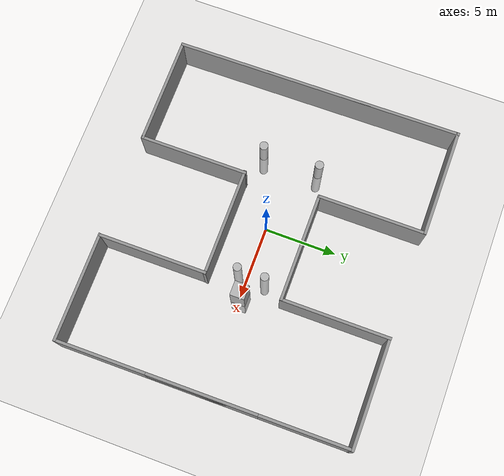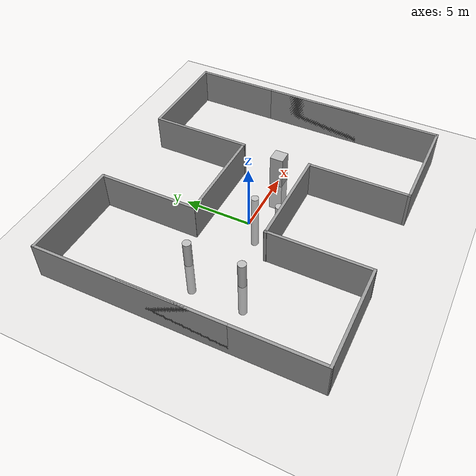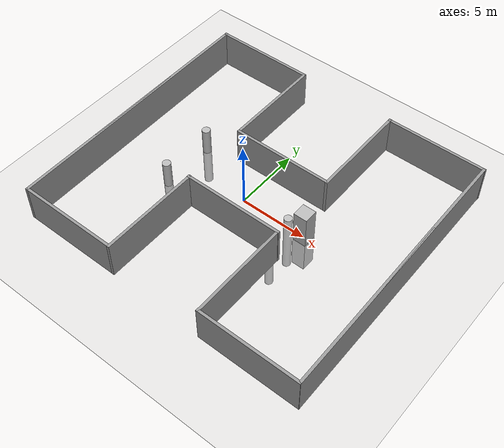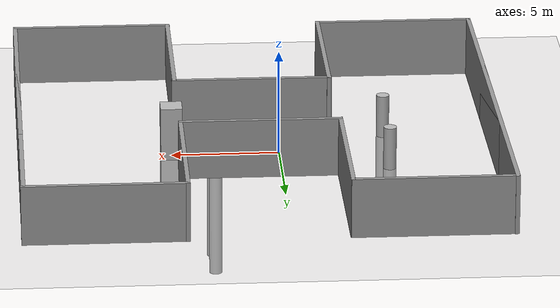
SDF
<sdf version="1.6">
 <world name="default">
  <model name="ground_plane">
   <static>1</static>
   <link name="link">
    <collision name="collision">
     <geometry><plane><normal>0 0 1</normal><size>100 100</size></plane></geometry>
     <surface><friction><ode><mu>100</mu><mu2>50</mu2></ode></friction></surface>
    </collision>
    <visual name="visual">
     <cast_shadows>0</cast_shadows>
     <geometry><plane><normal>0 0 1</normal><size>100 100</size></plane></geometry>
     <material>
      <script><uri>file://media/materials/scripts/gazebo.material</uri><name>Gazebo/Grey</name></script>
     </material>
    </visual>
   </link>
  </model>
  <light name="sun" type="directional">
   <pose>0 0 10 0 -0 0</pose>
   <diffuse>0.8 0.8 0.8 1</diffuse>
   <specular>0.1 0.1 0.1 1</specular>
   <attenuation>
    <range>1000</range>
    <constant>0.9</constant>
    <linear>0.01</linear>
    <quadratic>0.001</quadratic>
   </attenuation>
   <direction>-0.5 0.5 -1</direction>
  </light>
  <gravity>0 0 -9.8</gravity>
  <magnetic_field>6e-06 2.3e-05 -4.2e-05</magnetic_field>
  <atmosphere type="adiabatic"/>
  <physics name="default_physics" default="0" type="ode">
   <max_step_size>0.001</max_step_size>
   <real_time_factor>1</real_time_factor>
   <real_time_update_rate>1000</real_time_update_rate>
  </physics>
  <model name="grey_wall">
   <static>1</static>
   <link name="link">
    <pose>0 0 1.4 0 -0 0</pose>
    <collision name="collision"><geometry><box><size>7.5 0.2 2.8</size></box></geometry></collision>
    <visual name="visual">
     <cast_shadows>0</cast_shadows>
     <geometry><box><size>7.5 0.2 2.8</size></box></geometry>
     <material>
      <script>
       <uri>model://grey_wall/materials/scripts</uri>
       <uri>model://grey_wall/materials/textures</uri>
       <name>vrc/grey_wall</name>
      </script>
     </material>
    </visual>
   </link>
   <pose>-6.33005 10.0527 0 0 -0 0</pose>
  </model>
  <model name="grey_wall_3">
   <link name="link">
    <pose>0 0 1.4 0 -0 0</pose>
    <visual name="visual">
     <cast_shadows>0</cast_shadows>
     <geometry><box><size>7.5 0.2 2.8</size></box></geometry>
     <material>
      <script>
       <uri>model://grey_wall/materials/scripts</uri>
       <uri>model://grey_wall/materials/textures</uri>
       <name>vrc/grey_wall</name>
      </script>
      <ambient>1 1 1 1</ambient>
      <diffuse>1 1 1 1</diffuse>
      <specular>0 0 0 1</specular>
      <emissive>0 0 0 1</emissive>
     </material>
    </visual>
    <collision name="collision">
     <geometry><box><size>7.5 0.2 2.8</size></box></geometry>
     <surface>
      <friction>
       <ode><mu>1</mu><mu2>1</mu2><fdir1>0 0 0</fdir1><slip1>0</slip1><slip2>0</slip2></ode>
       <torsional>
        <coefficient>1</coefficient>
        <patch_radius>0</patch_radius>
        <surface_radius>0</surface_radius>
        <use_patch_radius>1</use_patch_radius>
        <ode><slip>0</slip></ode>
       </torsional>
      </friction>
      <bounce><restitution_coefficient>0</restitution_coefficient><threshold>1e+06</threshold></bounce>
      <contact>
       <collide_without_contact>0</collide_without_contact>
       <collide_without_contact_bitmask>1</collide_without_contact_bitmask>
       <collide_bitmask>1</collide_bitmask>
       <ode>
        <soft_cfm>0</soft_cfm>
        <soft_erp>0.2</soft_erp>
        <kp>1e+13</kp>
        <kd>1</kd>
        <max_vel>0.01</max_vel>
        <min_depth>0</min_depth>
       </ode>
       <bullet>
        <split_impulse>1</split_impulse>
        <split_impulse_penetration_threshold>-0.01</split_impulse_penetration_threshold>
        <soft_cfm>0</soft_cfm>
        <soft_erp>0.2</soft_erp>
        <kp>1e+13</kp>
        <kd>1</kd>
       </bullet>
      </contact>
     </surface>
    </collision>
   </link>
   <static>1</static>
   <pose>8.39643 -9.79569 0 0 -0 0</pose>
  </model>
  <model name="grey_wall_4">
   <link name="link">
    <pose>0 0 1.4 0 -0 0</pose>
    <visual name="visual">
     <cast_shadows>0</cast_shadows>
     <geometry><box><size>7.5 0.2 2.8</size></box></geometry>
     <material>
      <script>
       <uri>model://grey_wall/materials/scripts</uri>
       <uri>model://grey_wall/materials/textures</uri>
       <name>vrc/grey_wall</name>
      </script>
      <ambient>1 1 1 1</ambient>
      <diffuse>1 1 1 1</diffuse>
      <specular>0 0 0 1</specular>
      <emissive>0 0 0 1</emissive>
     </material>
    </visual>
    <collision name="collision">
     <geometry><box><size>7.5 0.2 2.8</size></box></geometry>
     <surface>
      <friction>
       <ode><mu>1</mu><mu2>1</mu2><fdir1>0 0 0</fdir1><slip1>0</slip1><slip2>0</slip2></ode>
       <torsional>
        <coefficient>1</coefficient>
        <patch_radius>0</patch_radius>
        <surface_radius>0</surface_radius>
        <use_patch_radius>1</use_patch_radius>
        <ode><slip>0</slip></ode>
       </torsional>
      </friction>
      <bounce><restitution_coefficient>0</restitution_coefficient><threshold>1e+06</threshold></bounce>
      <contact>
       <collide_without_contact>0</collide_without_contact>
       <collide_without_contact_bitmask>1</collide_without_contact_bitmask>
       <collide_bitmask>1</collide_bitmask>
       <ode>
        <soft_cfm>0</soft_cfm>
        <soft_erp>0.2</soft_erp>
        <kp>1e+13</kp>
        <kd>1</kd>
        <max_vel>0.01</max_vel>
        <min_depth>0</min_depth>
       </ode>
       <bullet>
        <split_impulse>1</split_impulse>
        <split_impulse_penetration_threshold>-0.01</split_impulse_penetration_threshold>
        <soft_cfm>0</soft_cfm>
        <soft_erp>0.2</soft_erp>
        <kp>1e+13</kp>
        <kd>1</kd>
       </bullet>
      </contact>
     </surface>
    </collision>
   </link>
   <static>1</static>
   <pose>8.34356 10.0342 0 0 -0 0</pose>
  </model>
  <model name="grey_wall_5">
   <link name="link">
    <pose>0 0 1.4 0 -0 0</pose>
    <visual name="visual">
     <cast_shadows>0</cast_shadows>
     <geometry><box><size>7.5 0.2 2.8</size></box></geometry>
     <material>
      <script>
       <uri>model://grey_wall/materials/scripts</uri>
       <uri>model://grey_wall/materials/textures</uri>
       <name>vrc/grey_wall</name>
      </script>
      <ambient>1 1 1 1</ambient>
      <diffuse>1 1 1 1</diffuse>
      <specular>0 0 0 1</specular>
      <emissive>0 0 0 1</emissive>
     </material>
    </visual>
    <collision name="collision">
     <geometry><box><size>7.5 0.2 2.8</size></box></geometry>
     <surface>
      <friction>
       <ode><mu>1</mu><mu2>1</mu2><fdir1>0 0 0</fdir1><slip1>0</slip1><slip2>0</slip2></ode>
       <torsional>
        <coefficient>1</coefficient>
        <patch_radius>0</patch_radius>
        <surface_radius>0</surface_radius>
        <use_patch_radius>1</use_patch_radius>
        <ode><slip>0</slip></ode>
       </torsional>
      </friction>
      <bounce><restitution_coefficient>0</restitution_coefficient><threshold>1e+06</threshold></bounce>
      <contact>
       <collide_without_contact>0</collide_without_contact>
       <collide_without_contact_bitmask>1</collide_without_contact_bitmask>
       <collide_bitmask>1</collide_bitmask>
       <ode>
        <soft_cfm>0</soft_cfm>
        <soft_erp>0.2</soft_erp>
        <kp>1e+13</kp>
        <kd>1</kd>
        <max_vel>0.01</max_vel>
        <min_depth>0</min_depth>
       </ode>
       <bullet>
        <split_impulse>1</split_impulse>
        <split_impulse_penetration_threshold>-0.01</split_impulse_penetration_threshold>
        <soft_cfm>0</soft_cfm>
        <soft_erp>0.2</soft_erp>
        <kp>1e+13</kp>
        <kd>1</kd>
       </bullet>
      </contact>
     </surface>
    </collision>
   </link>
   <static>1</static>
   <pose>4.74637 -6.14266 0 0 -0 1.57316</pose>
  </model>
  <model name="grey_wall_6">
   <link name="link">
    <pose>0 0 1.4 0 -0 0</pose>
    <visual name="visual">
     <cast_shadows>0</cast_shadows>
     <geometry><box><size>7.5 0.2 2.8</size></box></geometry>
     <material>
      <script>
       <uri>model://grey_wall/materials/scripts</uri>
       <uri>model://grey_wall/materials/textures</uri>
       <name>vrc/grey_wall</name>
      </script>
      <ambient>1 1 1 1</ambient>
      <diffuse>1 1 1 1</diffuse>
      <specular>0 0 0 1</specular>
      <emissive>0 0 0 1</emissive>
     </material>
    </visual>
    <collision name="collision">
     <geometry><box><size>7.5 0.2 2.8</size></box></geometry>
     <surface>
      <friction>
       <ode><mu>1</mu><mu2>1</mu2><fdir1>0 0 0</fdir1><slip1>0</slip1><slip2>0</slip2></ode>
       <torsional>
        <coefficient>1</coefficient>
        <patch_radius>0</patch_radius>
        <surface_radius>0</surface_radius>
        <use_patch_radius>1</use_patch_radius>
        <ode><slip>0</slip></ode>
       </torsional>
      </friction>
      <bounce><restitution_coefficient>0</restitution_coefficient><threshold>1e+06</threshold></bounce>
      <contact>
       <collide_without_contact>0</collide_without_contact>
       <collide_without_contact_bitmask>1</collide_without_contact_bitmask>
       <collide_bitmask>1</collide_bitmask>
       <ode>
        <soft_cfm>0</soft_cfm>
        <soft_erp>0.2</soft_erp>
        <kp>1e+13</kp>
        <kd>1</kd>
        <max_vel>0.01</max_vel>
        <min_depth>0</min_depth>
       </ode>
       <bullet>
        <split_impulse>1</split_impulse>
        <split_impulse_penetration_threshold>-0.01</split_impulse_penetration_threshold>
        <soft_cfm>0</soft_cfm>
        <soft_erp>0.2</soft_erp>
        <kp>1e+13</kp>
        <kd>1</kd>
       </bullet>
      </contact>
     </surface>
    </collision>
   </link>
   <static>1</static>
   <pose>4.68316 6.38861 0 0 -0 1.57224</pose>
  </model>
  <model name="grey_wall_7">
   <link name="link">
    <pose>0 0 1.4 0 -0 0</pose>
    <visual name="visual">
     <cast_shadows>0</cast_shadows>
     <geometry><box><size>7.5 0.2 2.8</size></box></geometry>
     <material>
      <script>
       <uri>model://grey_wall/materials/scripts</uri>
       <uri>model://grey_wall/materials/textures</uri>
       <name>vrc/grey_wall</name>
      </script>
      <ambient>1 1 1 1</ambient>
      <diffuse>1 1 1 1</diffuse>
      <specular>0 0 0 1</specular>
      <emissive>0 0 0 1</emissive>
     </material>
    </visual>
    <collision name="collision">
     <geometry><box><size>7.5 0.2 2.8</size></box></geometry>
     <surface>
      <friction>
       <ode><mu>1</mu><mu2>1</mu2><fdir1>0 0 0</fdir1><slip1>0</slip1><slip2>0</slip2></ode>
       <torsional>
        <coefficient>1</coefficient>
        <patch_radius>0</patch_radius>
        <surface_radius>0</surface_radius>
        <use_patch_radius>1</use_patch_radius>
        <ode><slip>0</slip></ode>
       </torsional>
      </friction>
      <bounce><restitution_coefficient>0</restitution_coefficient><threshold>1e+06</threshold></bounce>
      <contact>
       <collide_without_contact>0</collide_without_contact>
       <collide_without_contact_bitmask>1</collide_without_contact_bitmask>
       <collide_bitmask>1</collide_bitmask>
       <ode>
        <soft_cfm>0</soft_cfm>
        <soft_erp>0.2</soft_erp>
        <kp>1e+13</kp>
        <kd>1</kd>
        <max_vel>0.01</max_vel>
        <min_depth>0</min_depth>
       </ode>
       <bullet>
        <split_impulse>1</split_impulse>
        <split_impulse_penetration_threshold>-0.01</split_impulse_penetration_threshold>
        <soft_cfm>0</soft_cfm>
        <soft_erp>0.2</soft_erp>
        <kp>1e+13</kp>
        <kd>1</kd>
       </bullet>
      </contact>
     </surface>
    </collision>
   </link>
   <static>1</static>
   <pose>1.11559 -2.45553 0 0 -0 0</pose>
  </model>
  <model name="grey_wall_8">
   <link name="link">
    <pose>0 0 1.4 0 -0 0</pose>
    <visual name="visual">
     <cast_shadows>0</cast_shadows>
     <geometry><box><size>7.5 0.2 2.8</size></box></geometry>
     <material>
      <script>
       <uri>model://grey_wall/materials/scripts</uri>
       <uri>model://grey_wall/materials/textures</uri>
       <name>vrc/grey_wall</name>
      </script>
      <ambient>1 1 1 1</ambient>
      <diffuse>1 1 1 1</diffuse>
      <specular>0 0 0 1</specular>
      <emissive>0 0 0 1</emissive>
     </material>
    </visual>
    <collision name="collision">
     <geometry><box><size>7.5 0.2 2.8</size></box></geometry>
     <surface>
      <friction>
       <ode><mu>1</mu><mu2>1</mu2><fdir1>0 0 0</fdir1><slip1>0</slip1><slip2>0</slip2></ode>
       <torsional>
        <coefficient>1</coefficient>
        <patch_radius>0</patch_radius>
        <surface_radius>0</surface_radius>
        <use_patch_radius>1</use_patch_radius>
        <ode><slip>0</slip></ode>
       </torsional>
      </friction>
      <bounce><restitution_coefficient>0</restitution_coefficient><threshold>1e+06</threshold></bounce>
      <contact>
       <collide_without_contact>0</collide_without_contact>
       <collide_without_contact_bitmask>1</collide_without_contact_bitmask>
       <collide_bitmask>1</collide_bitmask>
       <ode>
        <soft_cfm>0</soft_cfm>
        <soft_erp>0.2</soft_erp>
        <kp>1e+13</kp>
        <kd>1</kd>
        <max_vel>0.01</max_vel>
        <min_depth>0</min_depth>
       </ode>
       <bullet>
        <split_impulse>1</split_impulse>
        <split_impulse_penetration_threshold>-0.01</split_impulse_penetration_threshold>
        <soft_cfm>0</soft_cfm>
        <soft_erp>0.2</soft_erp>
        <kp>1e+13</kp>
        <kd>1</kd>
       </bullet>
      </contact>
     </surface>
    </collision>
   </link>
   <static>1</static>
   <pose>1.00876 2.74575 0 0 -0 0</pose>
  </model>
  <model name="grey_wall_9">
   <link name="link">
    <pose>0 0 1.4 0 -0 0</pose>
    <visual name="visual">
     <cast_shadows>0</cast_shadows>
     <geometry><box><size>7.5 0.2 2.8</size></box></geometry>
     <material>
      <script>
       <uri>model://grey_wall/materials/scripts</uri>
       <uri>model://grey_wall/materials/textures</uri>
       <name>vrc/grey_wall</name>
      </script>
      <ambient>1 1 1 1</ambient>
      <diffuse>1 1 1 1</diffuse>
      <specular>0 0 0 1</specular>
      <emissive>0 0 0 1</emissive>
     </material>
    </visual>
    <collision name="collision">
     <geometry><box><size>7.5 0.2 2.8</size></box></geometry>
     <surface>
      <friction>
       <ode><mu>1</mu><mu2>1</mu2><fdir1>0 0 0</fdir1><slip1>0</slip1><slip2>0</slip2></ode>
       <torsional>
        <coefficient>1</coefficient>
        <patch_radius>0</patch_radius>
        <surface_radius>0</surface_radius>
        <use_patch_radius>1</use_patch_radius>
        <ode><slip>0</slip></ode>
       </torsional>
      </friction>
      <bounce><restitution_coefficient>0</restitution_coefficient><threshold>1e+06</threshold></bounce>
      <contact>
       <collide_without_contact>0</collide_without_contact>
       <collide_without_contact_bitmask>1</collide_without_contact_bitmask>
       <collide_bitmask>1</collide_bitmask>
       <ode>
        <soft_cfm>0</soft_cfm>
        <soft_erp>0.2</soft_erp>
        <kp>1e+13</kp>
        <kd>1</kd>
        <max_vel>0.01</max_vel>
        <min_depth>0</min_depth>
       </ode>
       <bullet>
        <split_impulse>1</split_impulse>
        <split_impulse_penetration_threshold>-0.01</split_impulse_penetration_threshold>
        <soft_cfm>0</soft_cfm>
        <soft_erp>0.2</soft_erp>
        <kp>1e+13</kp>
        <kd>1</kd>
       </bullet>
      </contact>
     </surface>
    </collision>
   </link>
   <static>1</static>
   <pose>-2.65248 6.39731 0 0 -0 1.57224</pose>
  </model>
  <model name="grey_wall_10">
   <link name="link">
    <pose>0 0 1.4 0 -0 0</pose>
    <visual name="visual">
     <cast_shadows>0</cast_shadows>
     <geometry><box><size>7.5 0.2 2.8</size></box></geometry>
     <material>
      <script>
       <uri>model://grey_wall/materials/scripts</uri>
       <uri>model://grey_wall/materials/textures</uri>
       <name>vrc/grey_wall</name>
      </script>
      <ambient>1 1 1 1</ambient>
      <diffuse>1 1 1 1</diffuse>
      <specular>0 0 0 1</specular>
      <emissive>0 0 0 1</emissive>
     </material>
    </visual>
    <collision name="collision">
     <geometry><box><size>7.5 0.2 2.8</size></box></geometry>
     <surface>
      <friction>
       <ode><mu>1</mu><mu2>1</mu2><fdir1>0 0 0</fdir1><slip1>0</slip1><slip2>0</slip2></ode>
       <torsional>
        <coefficient>1</coefficient>
        <patch_radius>0</patch_radius>
        <surface_radius>0</surface_radius>
        <use_patch_radius>1</use_patch_radius>
        <ode><slip>0</slip></ode>
       </torsional>
      </friction>
      <bounce><restitution_coefficient>0</restitution_coefficient><threshold>1e+06</threshold></bounce>
      <contact>
       <collide_without_contact>0</collide_without_contact>
       <collide_without_contact_bitmask>1</collide_without_contact_bitmask>
       <collide_bitmask>1</collide_bitmask>
       <ode>
        <soft_cfm>0</soft_cfm>
        <soft_erp>0.2</soft_erp>
        <kp>1e+13</kp>
        <kd>1</kd>
        <max_vel>0.01</max_vel>
        <min_depth>0</min_depth>
       </ode>
       <bullet>
        <split_impulse>1</split_impulse>
        <split_impulse_penetration_threshold>-0.01</split_impulse_penetration_threshold>
        <soft_cfm>0</soft_cfm>
        <soft_erp>0.2</soft_erp>
        <kp>1e+13</kp>
        <kd>1</kd>
       </bullet>
      </contact>
     </surface>
    </collision>
   </link>
   <static>1</static>
   <pose>-2.49855 -6.08169 0 0 0 -1.56854</pose>
  </model>
  <model name="grey_wall_11">
   <link name="link">
    <pose>0 0 1.4 0 -0 0</pose>
    <visual name="visual">
     <cast_shadows>0</cast_shadows>
     <geometry><box><size>7.5 0.2 2.8</size></box></geometry>
     <material>
      <script>
       <uri>model://grey_wall/materials/scripts</uri>
       <uri>model://grey_wall/materials/textures</uri>
       <name>vrc/grey_wall</name>
      </script>
      <ambient>1 1 1 1</ambient>
      <diffuse>1 1 1 1</diffuse>
      <specular>0 0 0 1</specular>
      <emissive>0 0 0 1</emissive>
     </material>
    </visual>
    <collision name="collision">
     <geometry><box><size>7.5 0.2 2.8</size></box></geometry>
     <surface>
      <friction>
       <ode><mu>1</mu><mu2>1</mu2><fdir1>0 0 0</fdir1><slip1>0</slip1><slip2>0</slip2></ode>
       <torsional>
        <coefficient>1</coefficient>
        <patch_radius>0</patch_radius>
        <surface_radius>0</surface_radius>
        <use_patch_radius>1</use_patch_radius>
        <ode><slip>0</slip></ode>
       </torsional>
      </friction>
      <bounce><restitution_coefficient>0</restitution_coefficient><threshold>1e+06</threshold></bounce>
      <contact>
       <collide_without_contact>0</collide_without_contact>
       <collide_without_contact_bitmask>1</collide_without_contact_bitmask>
       <collide_bitmask>1</collide_bitmask>
       <ode>
        <soft_cfm>0</soft_cfm>
        <soft_erp>0.2</soft_erp>
        <kp>1e+13</kp>
        <kd>1</kd>
        <max_vel>0.01</max_vel>
        <min_depth>0</min_depth>
       </ode>
       <bullet>
        <split_impulse>1</split_impulse>
        <split_impulse_penetration_threshold>-0.01</split_impulse_penetration_threshold>
        <soft_cfm>0</soft_cfm>
        <soft_erp>0.2</soft_erp>
        <kp>1e+13</kp>
        <kd>1</kd>
       </bullet>
      </contact>
     </surface>
    </collision>
   </link>
   <static>1</static>
   <pose>-6.1434 -9.72507 0 0 -0 0</pose>
  </model>
  <scene><ambient>0.4 0.4 0.4 1</ambient><background>0.7 0.7 0.7 1</background><shadows>1</shadows></scene>
  <spherical_coordinates>
   <surface_model>EARTH_WGS84</surface_model>
   <latitude_deg>0</latitude_deg>
   <longitude_deg>0</longitude_deg>
   <elevation>0</elevation>
   <heading_deg>0</heading_deg>
  </spherical_coordinates>
  <model name="grey_wall_2_edit">
   <link name="link">
    <pose>0 0 1.4 0 -0 0</pose>
    <inertial>
     <mass>1</mass>
     <inertia><ixx>1</ixx><ixy>0</ixy><ixz>0</ixz><iyy>1</iyy><iyz>0</iyz><izz>1</izz></inertia>
    </inertial>
    <visual name="ModelPreview_1::link::visual_1">
     <cast_shadows>0</cast_shadows>
     <geometry><box><size>7.5 0.2 2.8</size></box></geometry>
     <material>
      <script>
       <uri>model://grey_wall/materials/scripts</uri>
       <uri>model://grey_wall/materials/textures</uri>
       <name>vrc/grey_wall</name>
      </script>
      <ambient>1 1 1 1</ambient>
      <diffuse>1 1 1 1</diffuse>
      <specular>0 0 0 1</specular>
      <emissive>0 0 0 1</emissive>
      <shader type="vertex"><normal_map>__default__</normal_map></shader>
     </material>
    </visual>
    <visual name="visual">
     <cast_shadows>0</cast_shadows>
     <geometry><box><size>20 0.2 2.8</size></box></geometry>
     <material>
      <script>
       <uri>model://grey_wall/materials/scripts</uri>
       <uri>model://grey_wall/materials/textures</uri>
       <name>vrc/grey_wall</name>
      </script>
      <ambient>1 1 1 1</ambient>
      <diffuse>1 1 1 1</diffuse>
      <specular>0 0 0 1</specular>
      <emissive>0 0 0 1</emissive>
      <shader type="vertex"><normal_map>__default__</normal_map></shader>
     </material>
    </visual>
    <collision name="collision_1">
     <geometry><box><size>7.5 0.2 2.8</size></box></geometry>
     <surface>
      <friction>
       <ode><mu>1</mu><mu2>1</mu2><fdir1>0 0 0</fdir1><slip1>0</slip1><slip2>0</slip2></ode>
       <torsional>
        <coefficient>1</coefficient>
        <patch_radius>0</patch_radius>
        <surface_radius>0</surface_radius>
        <use_patch_radius>1</use_patch_radius>
        <ode><slip>0</slip></ode>
       </torsional>
      </friction>
      <bounce><restitution_coefficient>0</restitution_coefficient><threshold>1e+06</threshold></bounce>
      <contact>
       <collide_without_contact>0</collide_without_contact>
       <collide_without_contact_bitmask>1</collide_without_contact_bitmask>
       <collide_bitmask>1</collide_bitmask>
       <ode>
        <soft_cfm>0</soft_cfm>
        <soft_erp>0.2</soft_erp>
        <kp>1e+13</kp>
        <kd>1</kd>
        <max_vel>0.01</max_vel>
        <min_depth>0</min_depth>
       </ode>
       <bullet>
        <split_impulse>1</split_impulse>
        <split_impulse_penetration_threshold>-0.01</split_impulse_penetration_threshold>
        <soft_cfm>0</soft_cfm>
        <soft_erp>0.2</soft_erp>
        <kp>1e+13</kp>
        <kd>1</kd>
       </bullet>
      </contact>
     </surface>
    </collision>
    <collision name="collision">
     <geometry><box><size>20 0.2 2.8</size></box></geometry>
     <surface>
      <friction>
       <ode><mu>1</mu><mu2>1</mu2><fdir1>0 0 0</fdir1><slip1>0</slip1><slip2>0</slip2></ode>
       <torsional>
        <coefficient>1</coefficient>
        <patch_radius>0</patch_radius>
        <surface_radius>0</surface_radius>
        <use_patch_radius>1</use_patch_radius>
        <ode><slip>0</slip></ode>
       </torsional>
      </friction>
      <bounce><restitution_coefficient>0</restitution_coefficient><threshold>1e+06</threshold></bounce>
      <contact>
       <collide_without_contact>0</collide_without_contact>
       <collide_without_contact_bitmask>1</collide_without_contact_bitmask>
       <collide_bitmask>1</collide_bitmask>
       <ode>
        <soft_cfm>0</soft_cfm>
        <soft_erp>0.2</soft_erp>
        <kp>1e+13</kp>
        <kd>1</kd>
        <max_vel>0.01</max_vel>
        <min_depth>0</min_depth>
       </ode>
       <bullet>
        <split_impulse>1</split_impulse>
        <split_impulse_penetration_threshold>-0.01</split_impulse_penetration_threshold>
        <soft_cfm>0</soft_cfm>
        <soft_erp>0.2</soft_erp>
        <kp>1e+13</kp>
        <kd>1</kd>
       </bullet>
      </contact>
     </surface>
    </collision>
   </link>
   <static>1</static>
   <pose>12.0196 0.111669 0 0 0 -1.56643</pose>
  </model>
  <model name="grey_wall_1_edit">
   <link name="link">
    <pose>0 0 1.4 0 -0 0</pose>
    <inertial>
     <mass>1</mass>
     <inertia><ixx>1</ixx><ixy>0</ixy><ixz>0</ixz><iyy>1</iyy><iyz>0</iyz><izz>1</izz></inertia>
    </inertial>
    <visual name="ModelPreview_1::link::visual_1">
     <cast_shadows>0</cast_shadows>
     <geometry><box><size>7.5 0.2 2.8</size></box></geometry>
     <material>
      <script>
       <uri>model://grey_wall/materials/scripts</uri>
       <uri>model://grey_wall/materials/textures</uri>
       <name>vrc/grey_wall</name>
      </script>
      <ambient>1 1 1 1</ambient>
      <diffuse>1 1 1 1</diffuse>
      <specular>0 0 0 1</specular>
      <emissive>0 0 0 1</emissive>
      <shader type="vertex"><normal_map>__default__</normal_map></shader>
     </material>
    </visual>
    <visual name="visual">
     <cast_shadows>0</cast_shadows>
     <geometry><box><size>20 0.2 2.8</size></box></geometry>
     <material>
      <script>
       <uri>model://grey_wall/materials/scripts</uri>
       <uri>model://grey_wall/materials/textures</uri>
       <name>vrc/grey_wall</name>
      </script>
      <ambient>1 1 1 1</ambient>
      <diffuse>1 1 1 1</diffuse>
      <specular>0 0 0 1</specular>
      <emissive>0 0 0 1</emissive>
      <shader type="vertex"><normal_map>__default__</normal_map></shader>
     </material>
    </visual>
    <collision name="collision_1">
     <geometry><box><size>20 0.2 2.8</size></box></geometry>
     <surface>
      <friction>
       <ode><mu>1</mu><mu2>1</mu2><fdir1>0 0 0</fdir1><slip1>0</slip1><slip2>0</slip2></ode>
       <torsional>
        <coefficient>1</coefficient>
        <patch_radius>0</patch_radius>
        <surface_radius>0</surface_radius>
        <use_patch_radius>1</use_patch_radius>
        <ode><slip>0</slip></ode>
       </torsional>
      </friction>
      <bounce><restitution_coefficient>0</restitution_coefficient><threshold>1e+06</threshold></bounce>
      <contact>
       <collide_without_contact>0</collide_without_contact>
       <collide_without_contact_bitmask>1</collide_without_contact_bitmask>
       <collide_bitmask>1</collide_bitmask>
       <ode>
        <soft_cfm>0</soft_cfm>
        <soft_erp>0.2</soft_erp>
        <kp>1e+13</kp>
        <kd>1</kd>
        <max_vel>0.01</max_vel>
        <min_depth>0</min_depth>
       </ode>
       <bullet>
        <split_impulse>1</split_impulse>
        <split_impulse_penetration_threshold>-0.01</split_impulse_penetration_threshold>
        <soft_cfm>0</soft_cfm>
        <soft_erp>0.2</soft_erp>
        <kp>1e+13</kp>
        <kd>1</kd>
       </bullet>
      </contact>
     </surface>
    </collision>
    <collision name="collision">
     <geometry><box><size>7.5 0.2 2.8</size></box></geometry>
     <surface>
      <friction>
       <ode><mu>1</mu><mu2>1</mu2><fdir1>0 0 0</fdir1><slip1>0</slip1><slip2>0</slip2></ode>
       <torsional>
        <coefficient>1</coefficient>
        <patch_radius>0</patch_radius>
        <surface_radius>0</surface_radius>
        <use_patch_radius>1</use_patch_radius>
        <ode><slip>0</slip></ode>
       </torsional>
      </friction>
      <bounce><restitution_coefficient>0</restitution_coefficient><threshold>1e+06</threshold></bounce>
      <contact>
       <collide_without_contact>0</collide_without_contact>
       <collide_without_contact_bitmask>1</collide_without_contact_bitmask>
       <collide_bitmask>1</collide_bitmask>
       <ode>
        <soft_cfm>0</soft_cfm>
        <soft_erp>0.2</soft_erp>
        <kp>1e+13</kp>
        <kd>1</kd>
        <max_vel>0.01</max_vel>
        <min_depth>0</min_depth>
       </ode>
       <bullet>
        <split_impulse>1</split_impulse>
        <split_impulse_penetration_threshold>-0.01</split_impulse_penetration_threshold>
        <soft_cfm>0</soft_cfm>
        <soft_erp>0.2</soft_erp>
        <kp>1e+13</kp>
        <kd>1</kd>
       </bullet>
      </contact>
     </surface>
    </collision>
   </link>
   <static>1</static>
   <pose>-9.8947 0.171183 0 0 0 -1.5606</pose>
  </model>
  <model name="box1">
   <pose>5 0 0 0 0 0</pose>
   <link name="link">
    <collision name="collision">
     <kinematic>true</kinematic>
     <geometry><box><size>1 1 5</size></box></geometry>
    </collision>
    <visual name="visual"><geometry><box><size>1 1 5</size></box></geometry></visual>
   </link>
  </model>
  <model name="cylinder1">
   <pose>3 -1 -3 0 0 0</pose>
   <link name="link">
    <collision name="collision">
     <kinematic>true</kinematic>
     <geometry><cylinder><radius>0.3</radius><length>5</length></cylinder></geometry>
    </collision>
    <visual name="visual">
     <geometry><cylinder><radius>0.3</radius><length>5</length></cylinder></geometry>
    </visual>
   </link>
  </model>
  <model name="cylinder2">
   <pose>3 1 -3 0 0 0</pose>
   <link name="link">
    <collision name="collision">
     <kinematic>true</kinematic>
     <geometry><cylinder><radius>0.3</radius><length>5</length></cylinder></geometry>
    </collision>
    <visual name="visual">
     <geometry><cylinder><radius>0.3</radius><length>5</length></cylinder></geometry>
    </visual>
   </link>
  </model>
  <model name="cylinder3">
   <pose>-5 2 -0.5 0 0 0</pose>
   <link name="link">
    <collision name="collision">
     <kinematic>true</kinematic>
     <geometry><cylinder><radius>0.3</radius><length>5</length></cylinder></geometry>
    </collision>
    <visual name="visual">
     <geometry><cylinder><radius>0.3</radius><length>5</length></cylinder></geometry>
    </visual>
   </link>
  </model>
  <model name="cylinder4">
   <pose>-5 -2 -0.5 0 0 0</pose>
   <link name="link">
    <collision name="collision">
     <kinematic>true</kinematic>
     <geometry><cylinder><radius>0.3</radius><length>5</length></cylinder></geometry>
    </collision>
    <visual name="visual">
     <geometry><cylinder><radius>0.3</radius><length>5</length></cylinder></geometry>
    </visual>
   </link>
  </model>
 </world>
</sdf>
